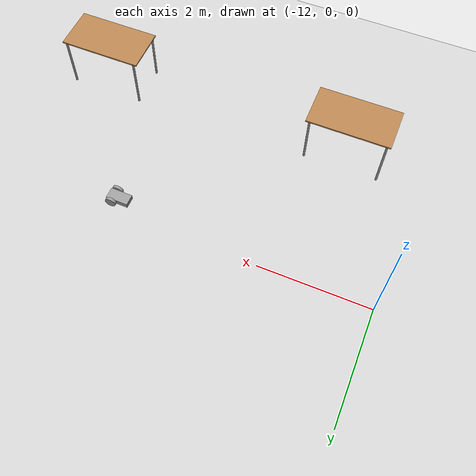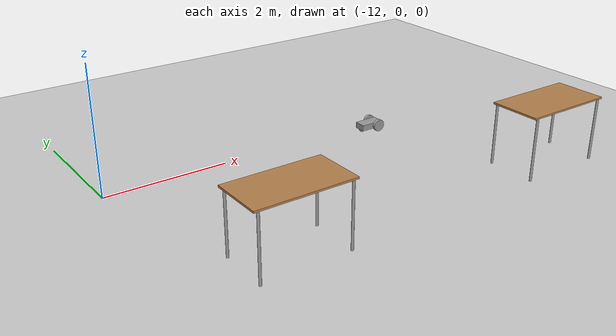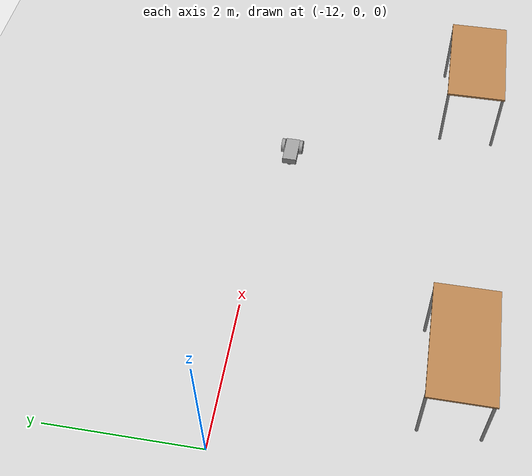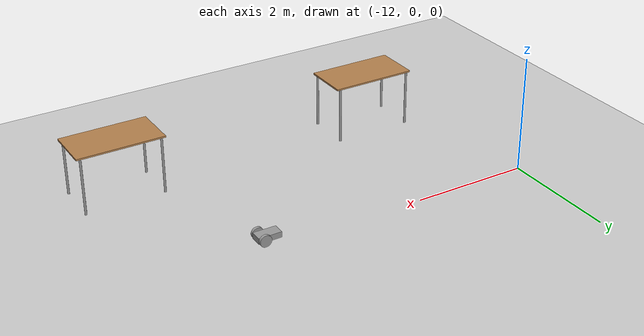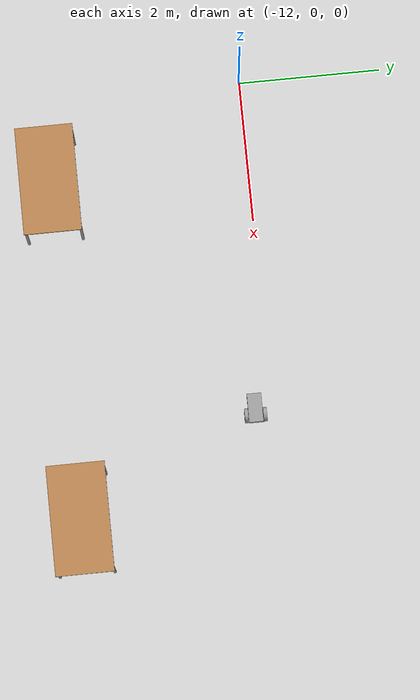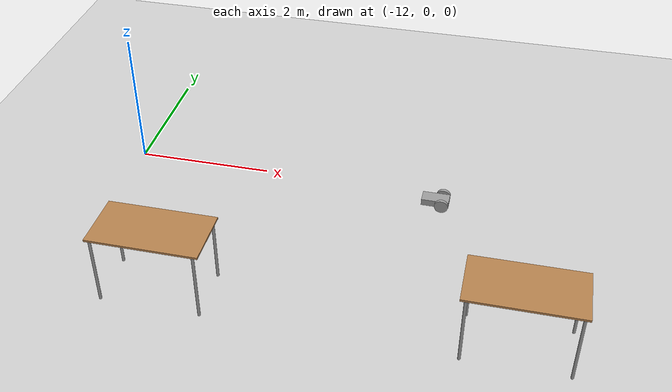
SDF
<sdf version="1.6">
 <world name="default">
  <model name="ground_plane">
   <static>1</static>
   <link name="link">
    <collision name="collision">
     <geometry><plane><normal>0 0 1</normal><size>100 100</size></plane></geometry>
     <surface>
      <contact><collide_bitmask>65535</collide_bitmask></contact>
      <friction><ode><mu>100</mu><mu2>50</mu2></ode></friction>
     </surface>
    </collision>
    <visual name="visual">
     <cast_shadows>0</cast_shadows>
     <geometry><plane><normal>0 0 1</normal><size>100 100</size></plane></geometry>
     <material>
      <script><uri>file://media/materials/scripts/gazebo.material</uri><name>Gazebo/Grey</name></script>
     </material>
    </visual>
   </link>
  </model>
  <model name="table_1">
   <static>1</static>
   <link name="link">
    <collision name="surface">
     <pose>0 0 1 0 -0 0</pose>
     <geometry><box><size>1.5 0.8 0.03</size></box></geometry>
     <surface><friction><ode><mu>0.6</mu><mu2>0.6</mu2></ode></friction></surface>
    </collision>
    <visual name="visual1">
     <pose>0 0 1 0 -0 0</pose>
     <geometry><box><size>1.5 0.8 0.03</size></box></geometry>
     <material>
      <script><uri>file://media/materials/scripts/gazebo.material</uri><name>Gazebo/Wood</name></script>
     </material>
    </visual>
    <collision name="front_left_leg">
     <pose>0.68 0.38 0.5 0 -0 0</pose>
     <geometry><cylinder><radius>0.02</radius><length>1</length></cylinder></geometry>
    </collision>
    <visual name="front_left_leg">
     <pose>0.68 0.38 0.5 0 -0 0</pose>
     <geometry><cylinder><radius>0.02</radius><length>1</length></cylinder></geometry>
     <material>
      <script><uri>file://media/materials/scripts/gazebo.material</uri><name>Gazebo/Grey</name></script>
     </material>
    </visual>
    <collision name="front_right_leg">
     <pose>0.68 -0.38 0.5 0 -0 0</pose>
     <geometry><cylinder><radius>0.02</radius><length>1</length></cylinder></geometry>
    </collision>
    <visual name="front_right_leg">
     <pose>0.68 -0.38 0.5 0 -0 0</pose>
     <geometry><cylinder><radius>0.02</radius><length>1</length></cylinder></geometry>
     <material>
      <script><uri>file://media/materials/scripts/gazebo.material</uri><name>Gazebo/Grey</name></script>
     </material>
    </visual>
    <collision name="back_right_leg">
     <pose>-0.68 -0.38 0.5 0 -0 0</pose>
     <geometry><cylinder><radius>0.02</radius><length>1</length></cylinder></geometry>
    </collision>
    <visual name="back_right_leg">
     <pose>-0.68 -0.38 0.5 0 -0 0</pose>
     <geometry><cylinder><radius>0.02</radius><length>1</length></cylinder></geometry>
     <material>
      <script><uri>file://media/materials/scripts/gazebo.material</uri><name>Gazebo/Grey</name></script>
     </material>
    </visual>
    <collision name="back_left_leg">
     <pose>-0.68 0.38 0.5 0 -0 0</pose>
     <geometry><cylinder><radius>0.02</radius><length>1</length></cylinder></geometry>
    </collision>
    <visual name="back_left_leg">
     <pose>-0.68 0.38 0.5 0 -0 0</pose>
     <geometry><cylinder><radius>0.02</radius><length>1</length></cylinder></geometry>
     <material>
      <script><uri>file://media/materials/scripts/gazebo.material</uri><name>Gazebo/Grey</name></script>
     </material>
    </visual>
   </link>
   <pose>-10.6647 -2.78045 0 0 -0 0</pose>
  </model>
  <model name="table_2">
   <static>1</static>
   <link name="link">
    <collision name="surface">
     <pose>0 0 1 0 -0 0</pose>
     <geometry><box><size>1.5 0.8 0.03</size></box></geometry>
     <surface><friction><ode><mu>0.6</mu><mu2>0.6</mu2></ode></friction></surface>
    </collision>
    <visual name="visual1">
     <pose>0 0 1 0 -0 0</pose>
     <geometry><box><size>1.5 0.8 0.03</size></box></geometry>
     <material>
      <script><uri>file://media/materials/scripts/gazebo.material</uri><name>Gazebo/Wood</name></script>
     </material>
    </visual>
    <collision name="front_left_leg">
     <pose>0.68 0.38 0.5 0 -0 0</pose>
     <geometry><cylinder><radius>0.02</radius><length>1</length></cylinder></geometry>
    </collision>
    <visual name="front_left_leg">
     <pose>0.68 0.38 0.5 0 -0 0</pose>
     <geometry><cylinder><radius>0.02</radius><length>1</length></cylinder></geometry>
     <material>
      <script><uri>file://media/materials/scripts/gazebo.material</uri><name>Gazebo/Grey</name></script>
     </material>
    </visual>
    <collision name="front_right_leg">
     <pose>0.68 -0.38 0.5 0 -0 0</pose>
     <geometry><cylinder><radius>0.02</radius><length>1</length></cylinder></geometry>
    </collision>
    <visual name="front_right_leg">
     <pose>0.68 -0.38 0.5 0 -0 0</pose>
     <geometry><cylinder><radius>0.02</radius><length>1</length></cylinder></geometry>
     <material>
      <script><uri>file://media/materials/scripts/gazebo.material</uri><name>Gazebo/Grey</name></script>
     </material>
    </visual>
    <collision name="back_right_leg">
     <pose>-0.68 -0.38 0.5 0 -0 0</pose>
     <geometry><cylinder><radius>0.02</radius><length>1</length></cylinder></geometry>
    </collision>
    <visual name="back_right_leg">
     <pose>-0.68 -0.38 0.5 0 -0 0</pose>
     <geometry><cylinder><radius>0.02</radius><length>1</length></cylinder></geometry>
     <material>
      <script><uri>file://media/materials/scripts/gazebo.material</uri><name>Gazebo/Grey</name></script>
     </material>
    </visual>
    <collision name="back_left_leg">
     <pose>-0.68 0.38 0.5 0 -0 0</pose>
     <geometry><cylinder><radius>0.02</radius><length>1</length></cylinder></geometry>
    </collision>
    <visual name="back_left_leg">
     <pose>-0.68 0.38 0.5 0 -0 0</pose>
     <geometry><cylinder><radius>0.02</radius><length>1</length></cylinder></geometry>
     <material>
      <script><uri>file://media/materials/scripts/gazebo.material</uri><name>Gazebo/Grey</name></script>
     </material>
    </visual>
   </link>
   <pose>-5.96146 -2.77053 0 0 -0 0</pose>
  </model>
  <model name="robot_1">
   <link name="link_0">
    <pose>-0.066667 0 0 0 -0 0</pose>
    <inertial>
     <mass>1</mass>
     <inertia>
      <ixx>0.166667</ixx>
      <ixy>0</ixy>
      <ixz>0</ixz>
      <iyy>0.166667</iyy>
      <iyz>0</iyz>
      <izz>0.166667</izz>
     </inertia>
    </inertial>
    <visual name="ModelPreview_0::link_0::visual_1">
     <pose>-0.15 0 -0.05 0 -0 0</pose>
     <geometry><sphere><radius>0.05</radius></sphere></geometry>
     <material>
      <lighting>1</lighting>
      <script><uri>file://media/materials/scripts/gazebo.material</uri><name>Gazebo/Grey</name></script>
      <shader type="pixel"><normal_map>__default__</normal_map></shader>
      <ambient>0.3 0.3 0.3 1</ambient>
      <diffuse>0.7 0.7 0.7 1</diffuse>
      <specular>0.01 0.01 0.01 1</specular>
      <emissive>0 0 0 1</emissive>
     </material>
    </visual>
    <visual name="visual">
     <geometry><box><size>0.4 0.2 0.1</size></box></geometry>
     <material>
      <lighting>1</lighting>
      <script><uri>file://media/materials/scripts/gazebo.material</uri><name>Gazebo/Grey</name></script>
      <shader type="pixel"><normal_map>__default__</normal_map></shader>
      <ambient>0.3 0.3 0.3 1</ambient>
      <diffuse>0.7 0.7 0.7 1</diffuse>
      <specular>0.01 0.01 0.01 1</specular>
      <emissive>0 0 0 1</emissive>
     </material>
    </visual>
    <collision name="collision_1">
     <pose>-0.15 0 -0.05 0 -0 0</pose>
     <geometry><sphere><radius>0.05</radius></sphere></geometry>
     <surface>
      <friction>
       <ode><mu>0</mu><mu2>0</mu2><fdir1>0 0 0</fdir1><slip1>1</slip1><slip2>1</slip2></ode>
       <torsional>
        <coefficient>1</coefficient>
        <patch_radius>0</patch_radius>
        <surface_radius>0</surface_radius>
        <use_patch_radius>1</use_patch_radius>
        <ode><slip>0</slip></ode>
       </torsional>
      </friction>
      <bounce><restitution_coefficient>0</restitution_coefficient><threshold>1e+06</threshold></bounce>
      <contact>
       <collide_without_contact>0</collide_without_contact>
       <collide_without_contact_bitmask>1</collide_without_contact_bitmask>
       <collide_bitmask>1</collide_bitmask>
       <ode>
        <soft_cfm>0</soft_cfm>
        <soft_erp>0.2</soft_erp>
        <kp>1e+13</kp>
        <kd>1</kd>
        <max_vel>0.01</max_vel>
        <min_depth>0</min_depth>
       </ode>
       <bullet>
        <split_impulse>1</split_impulse>
        <split_impulse_penetration_threshold>-0.01</split_impulse_penetration_threshold>
        <soft_cfm>0</soft_cfm>
        <soft_erp>0.2</soft_erp>
        <kp>1e+13</kp>
        <kd>1</kd>
       </bullet>
      </contact>
     </surface>
    </collision>
    <collision name="collision">
     <geometry><box><size>0.4 0.2 0.1</size></box></geometry>
     <surface>
      <friction>
       <ode><mu>1</mu><mu2>1</mu2><fdir1>0 0 0</fdir1><slip1>0</slip1><slip2>0</slip2></ode>
       <torsional>
        <coefficient>1</coefficient>
        <patch_radius>0</patch_radius>
        <surface_radius>0</surface_radius>
        <use_patch_radius>1</use_patch_radius>
        <ode><slip>0</slip></ode>
       </torsional>
      </friction>
      <bounce><restitution_coefficient>0</restitution_coefficient><threshold>1e+06</threshold></bounce>
      <contact>
       <collide_without_contact>0</collide_without_contact>
       <collide_without_contact_bitmask>1</collide_without_contact_bitmask>
       <collide_bitmask>1</collide_bitmask>
       <ode>
        <soft_cfm>0</soft_cfm>
        <soft_erp>0.2</soft_erp>
        <kp>1e+13</kp>
        <kd>1</kd>
        <max_vel>0.01</max_vel>
        <min_depth>0</min_depth>
       </ode>
       <bullet>
        <split_impulse>1</split_impulse>
        <split_impulse_penetration_threshold>-0.01</split_impulse_penetration_threshold>
        <soft_cfm>0</soft_cfm>
        <soft_erp>0.2</soft_erp>
        <kp>1e+13</kp>
        <kd>1</kd>
       </bullet>
      </contact>
     </surface>
    </collision>
   </link>
   <link name="link_2">
    <pose>0.033333 0.13 0 -0.000572 1.5707 1.57013</pose>
    <inertial>
     <mass>1</mass>
     <inertia><ixx>0.145833</ixx><ixy>0</ixy><ixz>0</ixz><iyy>0.145833</iyy><iyz>0</iyz><izz>0.125</izz></inertia>
    </inertial>
    <visual name="visual">
     <geometry><cylinder><radius>0.1</radius><length>0.05</length></cylinder></geometry>
     <material>
      <lighting>1</lighting>
      <script><uri>file://media/materials/scripts/gazebo.material</uri><name>Gazebo/Grey</name></script>
      <shader type="pixel"><normal_map>__default__</normal_map></shader>
      <ambient>0.3 0.3 0.3 1</ambient>
      <diffuse>0.7 0.7 0.7 1</diffuse>
      <specular>0.01 0.01 0.01 1</specular>
      <emissive>0 0 0 1</emissive>
     </material>
    </visual>
    <collision name="collision">
     <geometry><cylinder><radius>0.1</radius><length>0.05</length></cylinder></geometry>
     <surface>
      <friction>
       <ode><mu>1</mu><mu2>1</mu2><fdir1>0 0 0</fdir1><slip1>0</slip1><slip2>0</slip2></ode>
       <torsional>
        <coefficient>1</coefficient>
        <patch_radius>0</patch_radius>
        <surface_radius>0</surface_radius>
        <use_patch_radius>1</use_patch_radius>
        <ode><slip>0</slip></ode>
       </torsional>
      </friction>
      <bounce><restitution_coefficient>0</restitution_coefficient><threshold>1e+06</threshold></bounce>
      <contact>
       <collide_without_contact>0</collide_without_contact>
       <collide_without_contact_bitmask>1</collide_without_contact_bitmask>
       <collide_bitmask>1</collide_bitmask>
       <ode>
        <soft_cfm>0</soft_cfm>
        <soft_erp>0.2</soft_erp>
        <kp>1e+13</kp>
        <kd>1</kd>
        <max_vel>0.01</max_vel>
        <min_depth>0</min_depth>
       </ode>
       <bullet>
        <split_impulse>1</split_impulse>
        <split_impulse_penetration_threshold>-0.01</split_impulse_penetration_threshold>
        <soft_cfm>0</soft_cfm>
        <soft_erp>0.2</soft_erp>
        <kp>1e+13</kp>
        <kd>1</kd>
       </bullet>
      </contact>
     </surface>
    </collision>
   </link>
   <link name="link_3">
    <pose>0.033333 -0.13 0 4.8e-05 1.5707 1.57075</pose>
    <inertial>
     <mass>1</mass>
     <inertia><ixx>0.145833</ixx><ixy>0</ixy><ixz>0</ixz><iyy>0.145833</iyy><iyz>0</iyz><izz>0.125</izz></inertia>
    </inertial>
    <visual name="visual">
     <geometry><cylinder><radius>0.1</radius><length>0.05</length></cylinder></geometry>
     <material>
      <lighting>1</lighting>
      <script><uri>file://media/materials/scripts/gazebo.material</uri><name>Gazebo/Grey</name></script>
      <shader type="pixel"><normal_map>__default__</normal_map></shader>
      <ambient>0.3 0.3 0.3 1</ambient>
      <diffuse>0.7 0.7 0.7 1</diffuse>
      <specular>0.01 0.01 0.01 1</specular>
      <emissive>0 0 0 1</emissive>
     </material>
    </visual>
    <collision name="collision">
     <geometry><cylinder><radius>0.1</radius><length>0.05</length></cylinder></geometry>
     <surface>
      <friction>
       <ode><mu>1</mu><mu2>1</mu2><fdir1>0 0 0</fdir1><slip1>0</slip1><slip2>0</slip2></ode>
       <torsional>
        <coefficient>1</coefficient>
        <patch_radius>0</patch_radius>
        <surface_radius>0</surface_radius>
        <use_patch_radius>1</use_patch_radius>
        <ode><slip>0</slip></ode>
       </torsional>
      </friction>
      <bounce><restitution_coefficient>0</restitution_coefficient><threshold>1e+06</threshold></bounce>
      <contact>
       <collide_without_contact>0</collide_without_contact>
       <collide_without_contact_bitmask>1</collide_without_contact_bitmask>
       <collide_bitmask>1</collide_bitmask>
       <ode>
        <soft_cfm>0</soft_cfm>
        <soft_erp>0.2</soft_erp>
        <kp>1e+13</kp>
        <kd>1</kd>
        <max_vel>0.01</max_vel>
        <min_depth>0</min_depth>
       </ode>
       <bullet>
        <split_impulse>1</split_impulse>
        <split_impulse_penetration_threshold>-0.01</split_impulse_penetration_threshold>
        <soft_cfm>0</soft_cfm>
        <soft_erp>0.2</soft_erp>
        <kp>1e+13</kp>
        <kd>1</kd>
       </bullet>
      </contact>
     </surface>
    </collision>
   </link>
   <joint name="link_0_JOINT_1" type="revolute">
    <parent>link_0</parent>
    <child>link_3</child>
    <pose>0 0 0.03 0 -0 0</pose>
    <axis>
     <xyz>0 1 0</xyz>
     <use_parent_model_frame>0</use_parent_model_frame>
     <limit>
      <lower>-1.79769e+308</lower>
      <upper>1.79769e+308</upper>
      <effort>-1</effort>
      <velocity>-1</velocity>
     </limit>
     <dynamics>
      <spring_reference>0</spring_reference>
      <spring_stiffness>0</spring_stiffness>
      <damping>0</damping>
     </dynamics>
    </axis>
    <physics>
     <ode><limit><cfm>0</cfm><erp>0.2</erp></limit><suspension><cfm>0</cfm><erp>0.2</erp></suspension></ode>
    </physics>
   </joint>
   <joint name="link_0_JOINT_2" type="revolute">
    <parent>link_0</parent>
    <child>link_2</child>
    <pose>0 0 -0.03 0 -0 0</pose>
    <axis>
     <xyz>0 1 0</xyz>
     <use_parent_model_frame>0</use_parent_model_frame>
     <limit>
      <lower>-1.79769e+308</lower>
      <upper>1.79769e+308</upper>
      <effort>-1</effort>
      <velocity>-1</velocity>
     </limit>
     <dynamics>
      <spring_reference>0</spring_reference>
      <spring_stiffness>0</spring_stiffness>
      <damping>0</damping>
     </dynamics>
    </axis>
    <physics>
     <ode><limit><cfm>0</cfm><erp>0.2</erp></limit><suspension><cfm>0</cfm><erp>0.2</erp></suspension></ode>
    </physics>
   </joint>
   <static>0</static>
   <pose>-7.27843 -0.245241 0.099996 3.7e-05 1e-06 -0.0076</pose>
  </model>
 </world>
</sdf>
